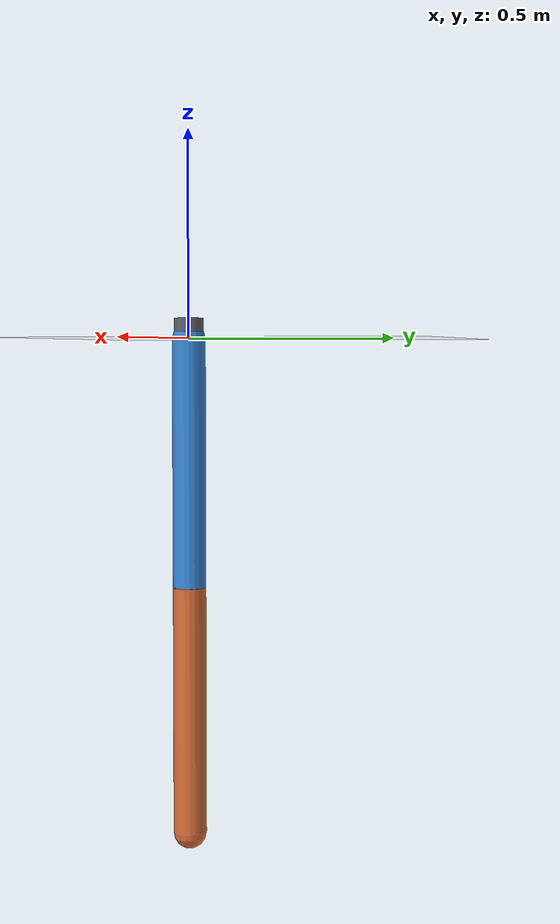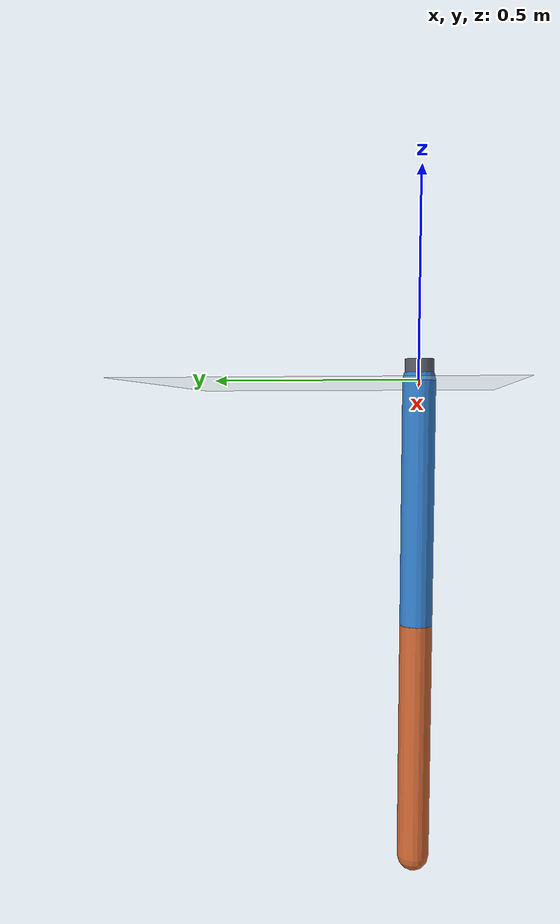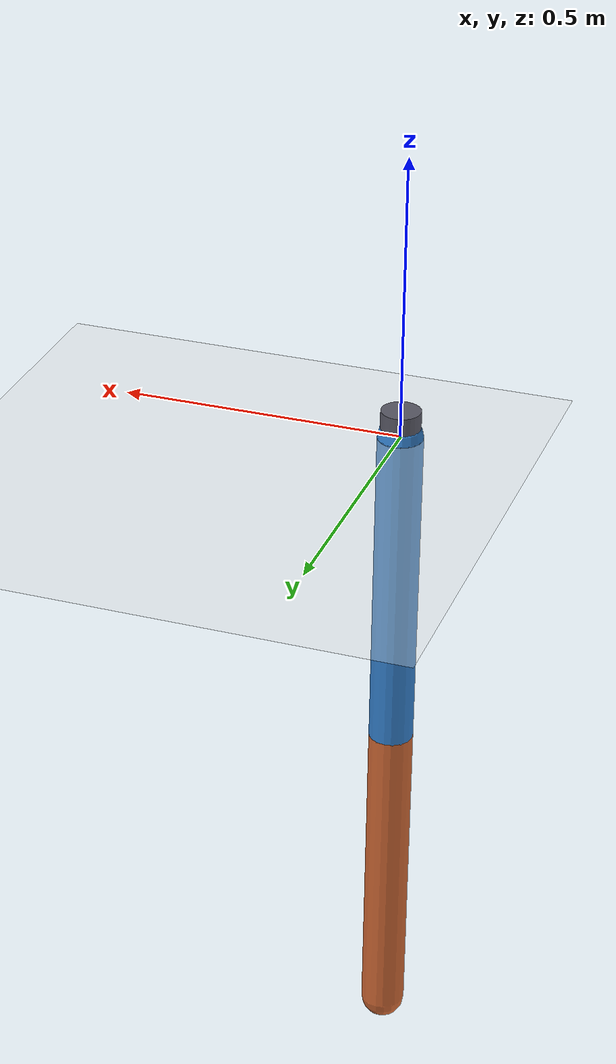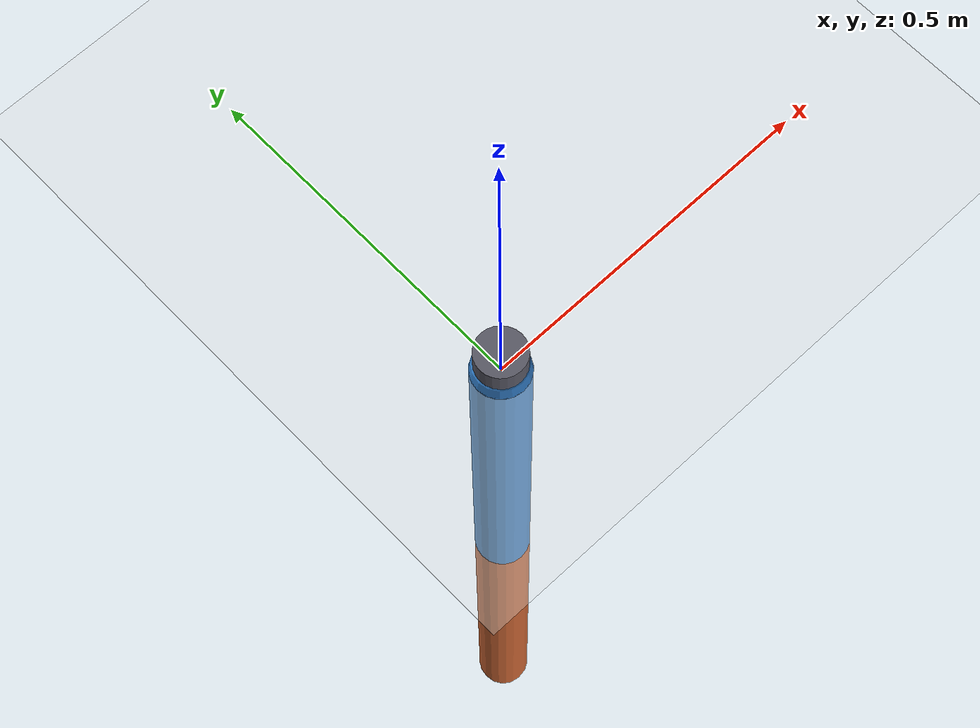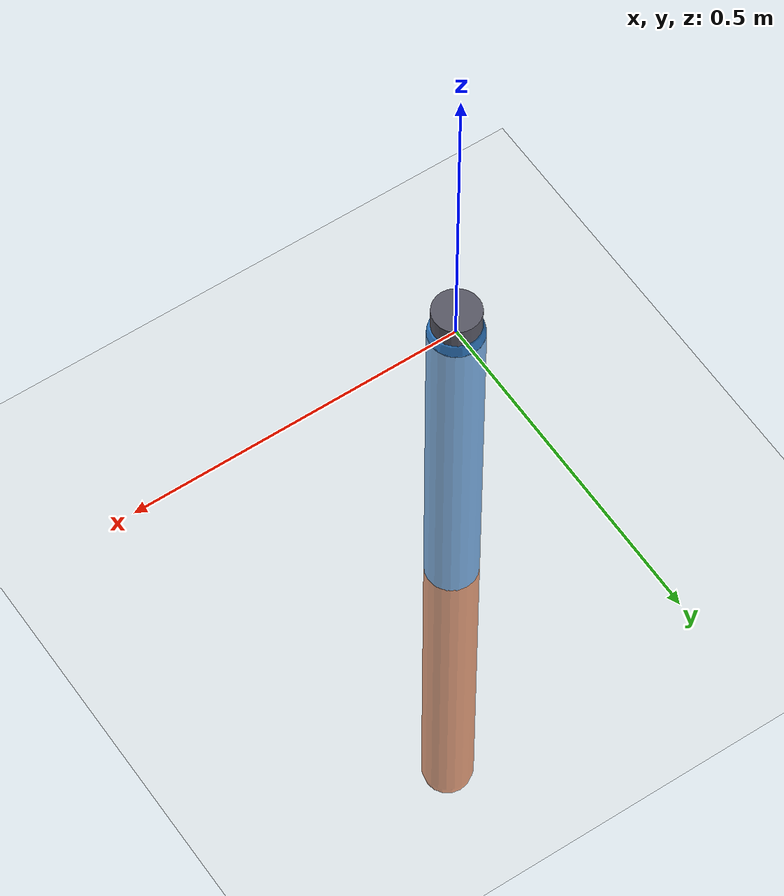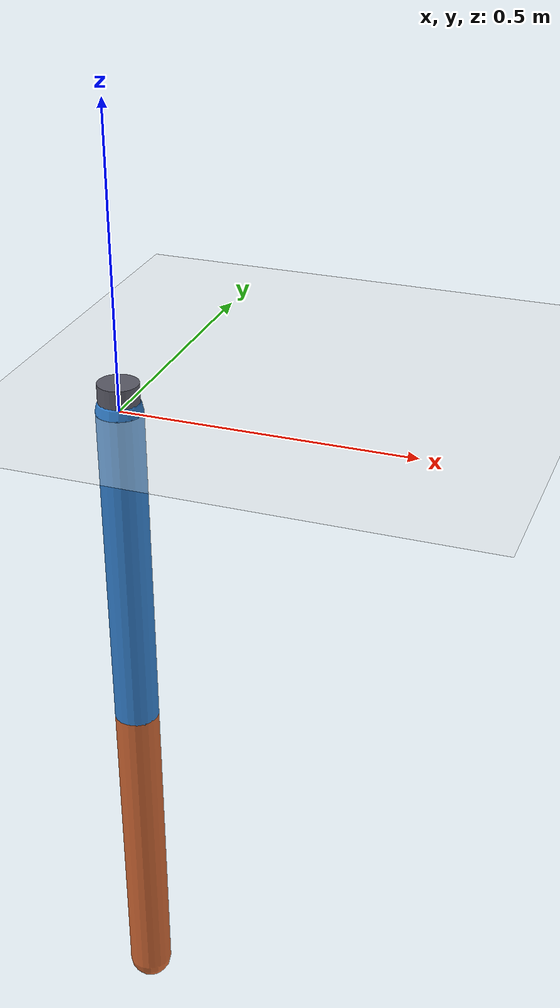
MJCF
<?xml version="1.0" encoding="utf-8"?>
<!-- Double pendulum with a vertical slide DOF so pivot height is a controllable qpos (see sim_parameter_lab.py). -->
<mujoco model="double_pendulum_lab">
  <compiler angle="radian" coordinate="local"/>

  <option timestep="0.002" gravity="0 0 -9.81" integrator="RK4"/>

  <visual>
    <headlight diffuse="0.8 0.8 0.8" ambient="0.2 0.2 0.2" specular="0 0 0"/>
  </visual>

  <default>
    <joint limited="true" damping="0.02"/>
    <geom type="capsule" friction="1 0.1 0.1" density="800"/>
  </default>

  <worldbody>
    <light pos="0 0 3"/>
    <geom name="ground" type="plane" size="2 2 0.1" rgba="0.92 0.92 0.92 1"/>
    <camera name="main" pos="2.2 -2.2 1.8" xyaxes="0.7 0.7 0  -0.3 0.3 0.9"/>

    <!-- Slide along Z sets pivot height (qpos in meters). -->
    <body name="tower" pos="0 0 0">
      <joint name="anchor_height" type="slide" axis="0 0 1" range="1.0 2.5" damping="0.12"/>
      <geom name="mast" type="cylinder" fromto="0 0 -0.05 0 0 0.05" size="0.035" rgba="0.35 0.35 0.4 1"/>

      <body name="base" pos="0 0 0">
        <site name="pivot" pos="0 0 0" size="0.012" rgba="0 0 0 1"/>

        <body name="link1">
          <joint name="hinge1" type="hinge" axis="0 1 0" limited="false" damping="0.01"/>
          <geom name="rod1" fromto="0 0 0  0 0 -0.6" size="0.04" rgba="0.2 0.5 0.8 1"/>

          <body name="link2" pos="0 0 -0.6">
            <joint name="hinge2" type="hinge" axis="0 1 0" limited="false" damping="0.01"/>
            <geom name="rod2" fromto="0 0 0  0 0 -0.6" size="0.04" rgba="0.8 0.4 0.2 1"/>
            <site name="tip" pos="0 0 -0.6" size="0.01" rgba="0 0 0 1"/>
          </body>
        </body>
      </body>
    </body>
  </worldbody>
</mujoco>
